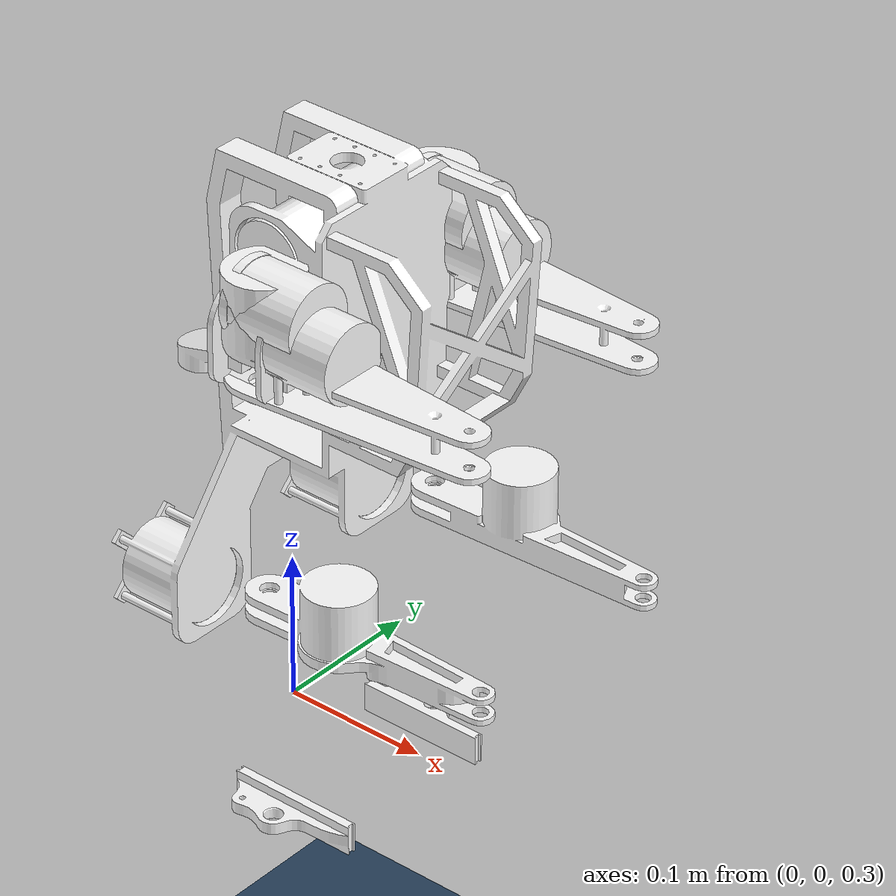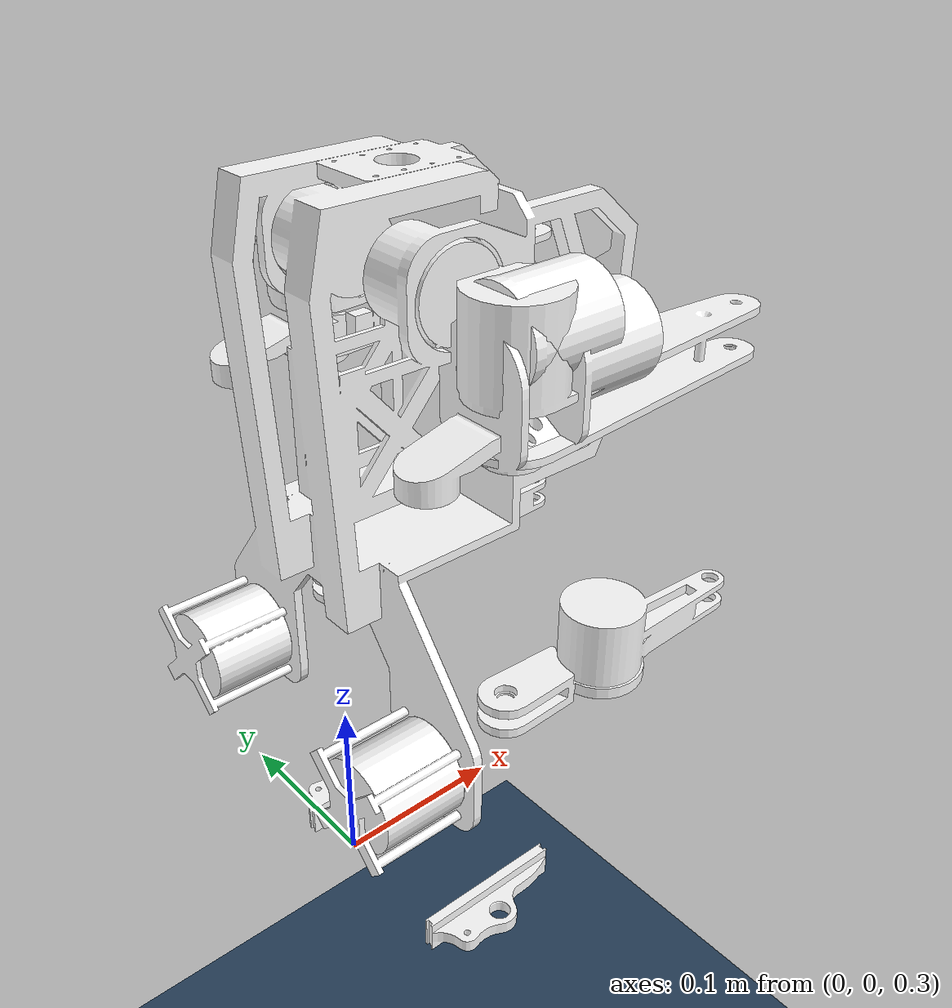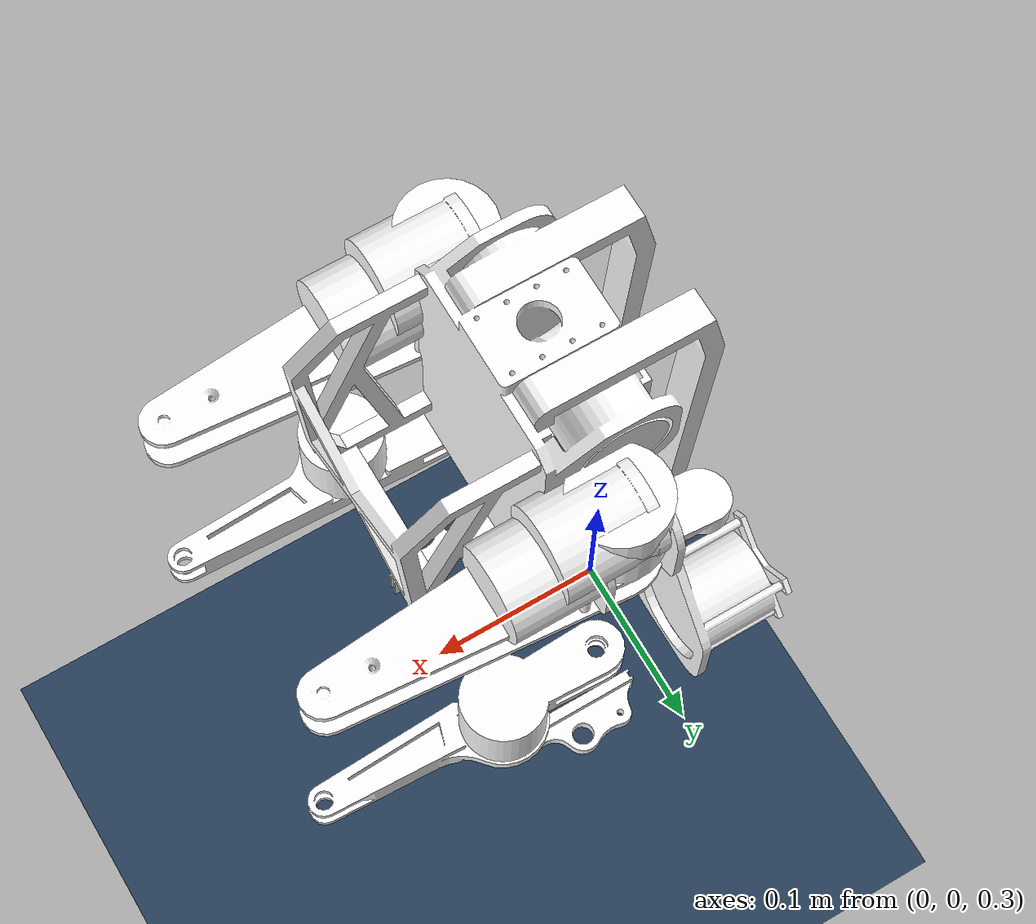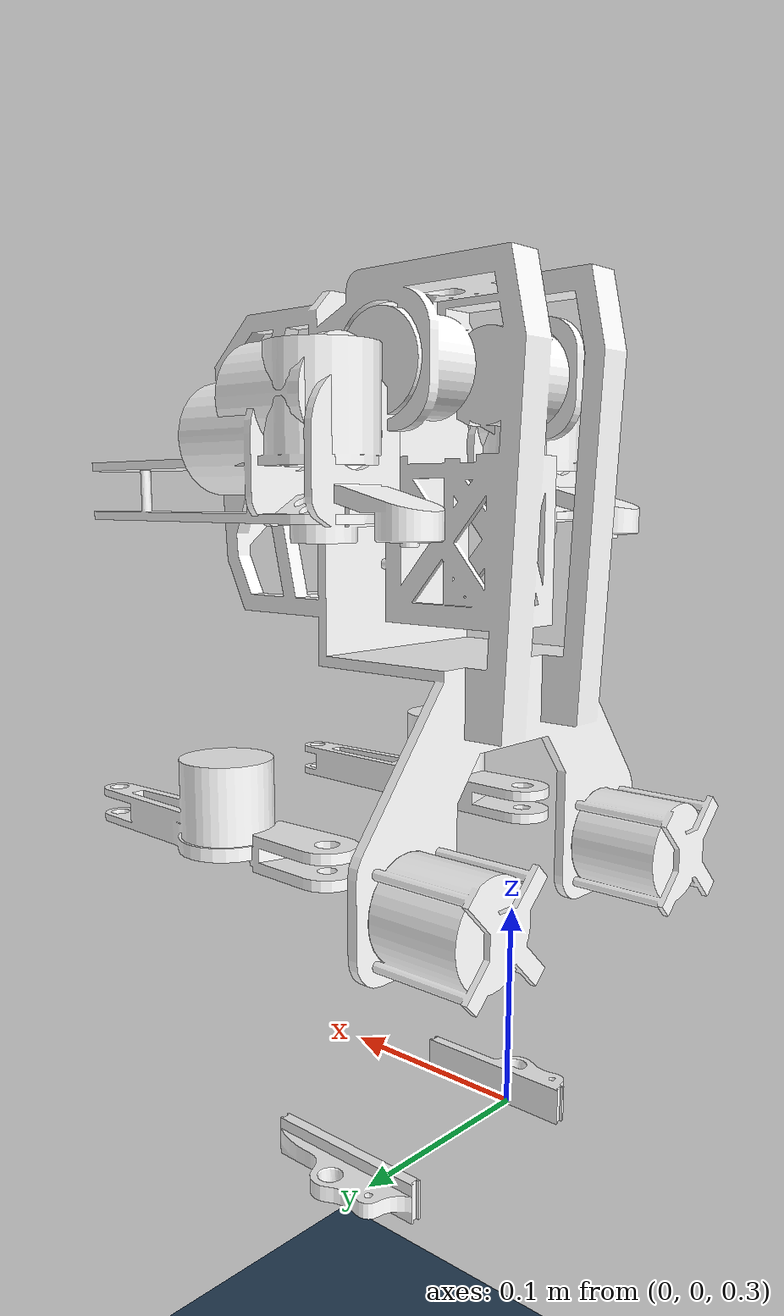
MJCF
<mujoco model="PAI-urdf">
  <compiler angle="radian" meshdir="../meshes/" />
  <statistic meansize="0.0926387" extent="0.651875" center="0.0422475 1.96626e-06 -0.0564558" />
  <asset>
    <mesh name="base_link" file="base_link.STL" />
    <mesh name="L_hip" file="L_hip.STL" />
    <mesh name="L_hip2" file="L_hip2.STL" />
    <mesh name="L_thigh" file="L_thigh.STL" />
    <mesh name="L_calf" file="L_calf.STL" />
    <mesh name="L_toe" file="L_toe.STL" />
    <mesh name="R_hip" file="R_hip.STL" />
    <mesh name="R_hip2" file="R_hip2.STL" />
    <mesh name="R_thigh" file="R_thigh.STL" />
    <mesh name="R_calf" file="R_calf.STL" />
    <mesh name="R_toe" file="R_toe.STL" />
    <texture name="grid" type="2d" builtin="checker" rgb1=".1 .2 .3"
      rgb2=".2 .3 .4" width="300" height="300" />
    <material name="grid" texture="grid" texrepeat="8 8" reflectance=".1" />
  </asset>
  <worldbody>
    <light name="top" pos="0 0 10" castshadow="false" />
    <geom size="10 10 .01" type="plane" material="grid" />
    <body name="base" pos="0.0 0. 0.58">
      <freejoint/>
      <inertial pos="0.069429 0 0.093307" quat="1 0 0 0" mass="1.5" diaginertia="0.0028787 0.0047606 0.0043029" />
      <geom type="mesh" contype="0" conaffinity="0" group="1" density="0" rgba="1 1 1 1"
        mesh="base_link" />
      <body name="L_hip" pos="0 0.075 0">
        <inertial pos="0.041409 0 0.055119" quat="0.678339 0.199641 0.199641 0.678339" mass="0.35"
          diaginertia="3.8839e-05 3.72416e-05 3.58764e-05" />
        <joint name="L_hip_joint" pos="0 0 0" axis="-1 0 0" />
        <geom type="mesh" contype="0" conaffinity="0" group="1" density="0" rgba="1 1 1 1"
          mesh="L_hip" />
        <geom type="mesh" rgba="1 1 1 1" mesh="L_hip" />
        <body name="L_hip2" pos="0.049 0 -0.0005">
          <inertial pos="-0.00049584 0 0.0032955" quat="0.644715 0.290417 0.290417 0.644715"
            mass="0.65" diaginertia="6.8581e-05 6.84798e-05 6.71912e-05" />
          <joint name="L_hip2_joint" pos="0 0 0" axis="0 0 1" />
          <geom type="mesh" contype="0" conaffinity="0" group="1" density="0" rgba="1 1 1 1"
            mesh="L_hip2" />
          <geom type="mesh" rgba="1 1 1 1" mesh="L_hip2" />
          <body name="L_thigh">
            <inertial pos="0 0 -0.05727" quat="0.707107 0 0 0.707107" mass="0.2"
              diaginertia="0.00012926 0.00012318 6.3186e-06" />
            <joint name="L_thigh_joint" pos="0 0 0" axis="0 1 0" />
            <geom type="mesh" contype="0" conaffinity="0" group="1" density="0" rgba="1 1 1 1"
              mesh="L_thigh" />
            <geom type="mesh" rgba="1 1 1 1" mesh="L_thigh" />
            <body name="L_calf" pos="0 0 -0.15">
              <inertial pos="-0.0045962 0.012568 -0.063722"
                quat="0.714469 -0.00072224 -0.00163154 0.699665" mass="0.36"
                diaginertia="0.000122532 0.00011945 2.00347e-05" />
              <joint name="L_calf_joint" pos="0 0 0" axis="0 1 0" />
              <geom type="mesh" contype="0" conaffinity="0" group="1" density="0" rgba="1 1 1 1"
                mesh="L_calf" />
              <geom type="mesh" rgba="1 1 1 1" mesh="L_calf" />
              <body name="L_toe" pos="0 0 -0.16">
                <inertial pos="0.010818 -1.9984e-08 -0.014672"
                  quat="0.489092 0.510675 0.510675 0.489092" mass="0.09"
                  diaginertia="2.7107e-05 2.69872e-05 2.7148e-06" />
                <joint name="L_toe_joint" pos="0 0 0" axis="0 1 0" />
                <geom type="mesh" contype="11" conaffinity="0" group="1" density="0" rgba="1 1 1 1"
                   mesh="L_toe" />
                <geom type="mesh" rgba="1 1 1 1" mesh="L_toe" />
              </body>
            </body>
          </body>
        </body>
      </body>
      <body name="R_hip" pos="0 -0.075 0">
        <inertial pos="0.041409 0 0.055119" quat="0.678339 0.199641 0.199641 0.678339" mass="0.35"
          diaginertia="3.8839e-05 3.72416e-05 3.58764e-05" />
        <joint name="R_hip_joint" pos="0 0 0" axis="-1 0 0" />
        <geom type="mesh" contype="0" conaffinity="0" group="1" density="0" rgba="1 1 1 1"
          mesh="R_hip" />
        <geom type="mesh" rgba="1 1 1 1" mesh="R_hip" />
        <body name="R_hip2" pos="0.049 0 -0.0005">
          <inertial pos="-0.00049584 0 0.0032955" quat="0.644715 0.290417 0.290417 0.644715"
            mass="0.65" diaginertia="6.8581e-05 6.84798e-05 6.71912e-05" />
          <joint name="R_hip2_joint" pos="0 0 0" axis="0 0 1" />
          <geom type="mesh" contype="0" conaffinity="0" group="1" density="0" rgba="1 1 1 1"
            mesh="R_hip2" />
          <geom type="mesh" rgba="1 1 1 1" mesh="R_hip2" />
          <body name="R_thigh">
            <inertial pos="0 0 -0.05727" quat="0.707107 0 0 0.707107" mass="0.2"
              diaginertia="0.00012926 0.00012318 6.3186e-06" />
            <joint name="R_thigh_joint" pos="0 0 0" axis="0 -1 0" />
            <geom type="mesh" contype="0" conaffinity="0" group="1" density="0" rgba="1 1 1 1"
              mesh="R_thigh" />
            <geom type="mesh" rgba="1 1 1 1" mesh="R_thigh" />
            <body name="R_calf" pos="0 0 -0.15">
              <inertial pos="-0.0045962 -0.012568 -0.063722"
                quat="0.699665 -0.00163154 -0.00072224 0.714469" mass="0.36"
                diaginertia="0.000122532 0.00011945 2.00347e-05" />
              <joint name="R_calf_joint" pos="0 0 0" axis="0 -1 0" />
              <geom type="mesh" contype="0" conaffinity="0" group="1" density="0" rgba="1 1 1 1"
                mesh="R_calf" />
              <geom type="mesh" rgba="1 1 1 1" mesh="R_calf" />
              <body name="R_toe" pos="0 0 -0.16">
                <inertial pos="0.010818 -1.9984e-08 -0.014672"
                  quat="0.489092 0.510675 0.510675 0.489092" mass="0.09"
                  diaginertia="2.7107e-05 2.69872e-05 2.7148e-06" />
                <joint name="R_toe_joint" pos="0 0 0" axis="0 -1 0" />
                <geom type="mesh" contype="0" conaffinity="0" group="1" density="0" rgba="1 1 1 1"
                  mesh="R_toe" />
                <geom type="mesh" rgba="1 1 1 1" mesh="R_toe" />
              </body>
            </body>
          </body>
        </body>
      </body>
    </body>

  </worldbody>
</mujoco>
